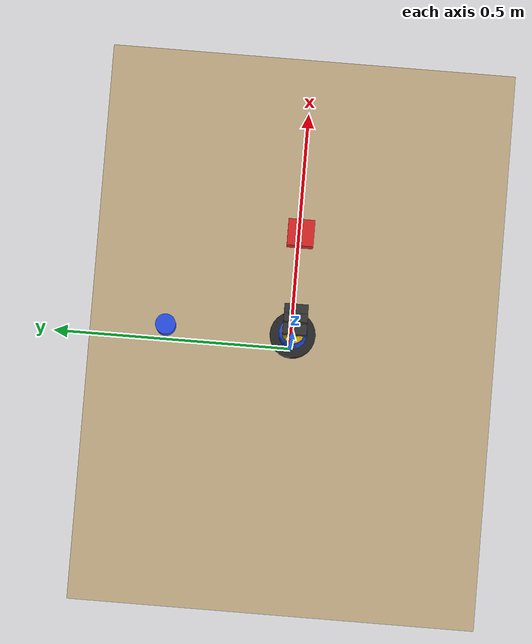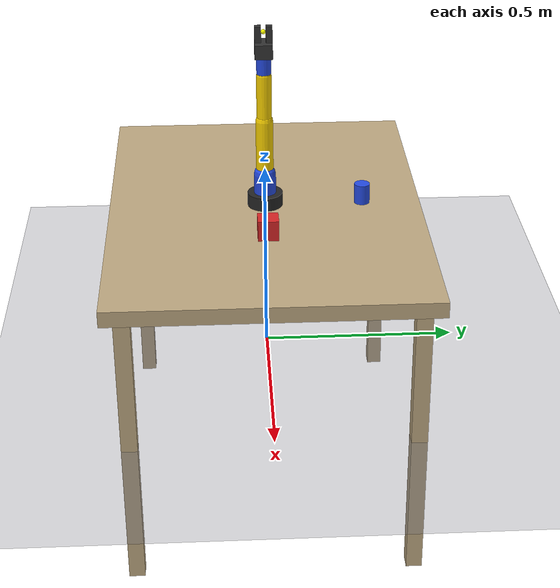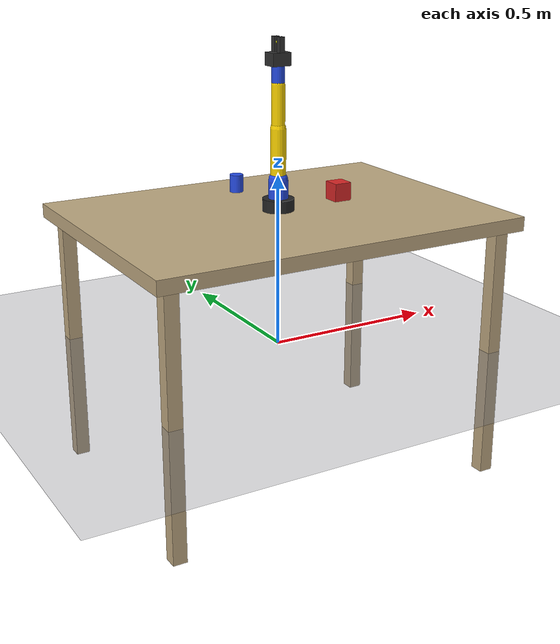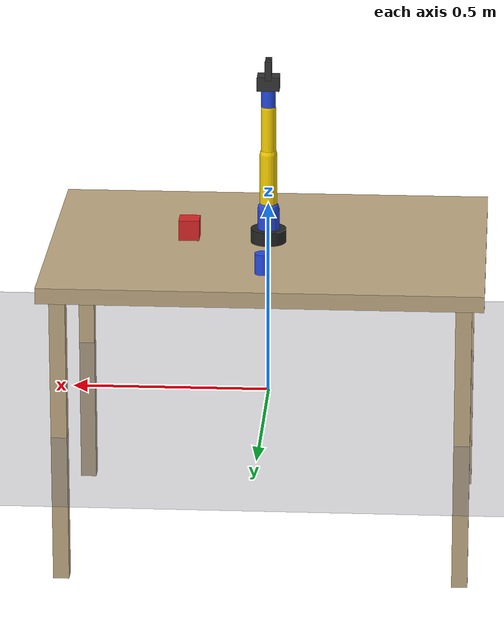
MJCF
<mujoco model="so101_task1">

  <compiler angle="radian" autolimits="true"/>

  <option timestep="0.002" gravity="0 0 -9.81" integrator="RK4">
    <flag contact="enable" frictionloss="enable"/>
  </option>

  <visual>
    <headlight diffuse="0.65 0.65 0.65" ambient="0.35 0.35 0.35" specular="0.15 0.15 0.15"/>
    <rgba haze="0.15 0.25 0.35 1"/>
    <!-- Free camera default: pulled back to frame full robot + table + target -->
    <global azimuth="135" elevation="-22" offwidth="1920" offheight="1080"/>
    <quality shadowsize="2048"/>
    <map force="0.1" zfar="30"/>
  </visual>

  <statistic center="0.05 0.10 0.55" extent="1.2"/>

  <asset>
    <!-- Procedural checkerboard textures for table + floor (no external files) -->
    <texture name="floor_tex" type="2d" builtin="checker"
             rgb1="0.35 0.35 0.40" rgb2="0.55 0.55 0.60"
             width="512" height="512" mark="edge" markrgb="0.1 0.1 0.1"/>
    <texture name="table_tex" type="2d" builtin="checker"
             rgb1="0.85 0.78 0.62" rgb2="0.65 0.55 0.40"
             width="512" height="512" mark="edge" markrgb="0.2 0.15 0.1"/>

    <material name="floor_mat"   texture="floor_tex" texrepeat="8 8"
              specular="0.1" shininess="0.1" reflectance="0.05"/>
    <material name="table_mat"   texture="table_tex" texrepeat="4 3"
              specular="0.2" shininess="0.3"/>
    <material name="base_mat"    rgba="0.15 0.15 0.15 1" shininess="0.6"/>
    <material name="link_mat"    rgba="1.0 0.84 0.0 1" shininess="0.5"/>
    <material name="joint_mat"   rgba="0.15 0.30 0.90 1" shininess="0.5"/>
    <material name="gripper_mat" rgba="0.20 0.20 0.20 1"/>
    <material name="object_mat"  rgba="0.85 0.15 0.15 1" shininess="0.5"/>
    <material name="blue_mat"    rgba="0.15 0.30 0.90 1" shininess="0.5"/>
  </asset>

  <default>
    <joint damping="0.8" armature="0.02" frictionloss="0.02"/>
    <geom contype="1" conaffinity="1" condim="4" friction="1.2 0.005 0.0001"/>
    <position kp="120" kv="12"/>
  </default>

  <worldbody>

    <!-- Floor -->
    <geom name="floor" type="plane" size="2 2 0.1"
          material="floor_mat" contype="1" conaffinity="1"/>

    <!-- Table — top surface at z = 0.40 -->
    <body name="table" pos="0 0 0.38">
      <geom type="box" size="0.55 0.40 0.02" pos="0 0 0"      material="table_mat"/>
      <geom type="box" size="0.02 0.02 0.38" pos=" 0.50  0.35 -0.38" material="table_mat"/>
      <geom type="box" size="0.02 0.02 0.38" pos="-0.50  0.35 -0.38" material="table_mat"/>
      <geom type="box" size="0.02 0.02 0.38" pos=" 0.50 -0.35 -0.38" material="table_mat"/>
      <geom type="box" size="0.02 0.02 0.38" pos="-0.50 -0.35 -0.38" material="table_mat"/>
    </body>

    <body name="base_link" pos="0 0 0.40">
      <geom name="base_geom" type="cylinder" size="0.045 0.035"
            material="base_mat" contype="1" conaffinity="0"/>
      <inertial pos="0 0 0" mass="0.6" diaginertia="0.002 0.002 0.002"/>

      <!-- Joint 1: shoulder_pan — Z axis (yaw) -->
      <joint name="shoulder_pan" type="hinge" axis="0 0 1"
             range="-1.91986 1.91986" pos="0 0 0"/>

      <body name="shoulder_link" pos="0 0 0.055">
        <geom name="shoulder_geom" type="capsule" size="0.028"
              fromto="0 0 -0.03 0 0 0.03" material="joint_mat" contype="1" conaffinity="0"/>
        <inertial pos="0 0 0" mass="0.35" diaginertia="0.001 0.001 0.001"/>

        <!-- Joint 2: shoulder_lift — Y axis (pitch) -->
        <joint name="shoulder_lift" type="hinge" axis="0 1 0"
               range="-1.74533 1.74533" pos="0 0 0"/>

        <body name="upper_arm_link" pos="0 0 0.035">
          <geom name="upper_arm_geom" type="capsule" size="0.022"
                fromto="0 0 0 0 0 0.14" material="link_mat" contype="1" conaffinity="0"/>
          <inertial pos="0 0 0.07" mass="0.28" diaginertia="0.0006 0.0006 0.00005"/>

          <!-- Joint 3: elbow_flex — Y axis (pitch) -->
          <joint name="elbow_flex" type="hinge" axis="0 1 0"
                 range="-1.69 1.69" pos="0 0 0.14"/>

          <body name="lower_arm_link" pos="0 0 0.14">
            <geom name="lower_arm_geom" type="capsule" size="0.019"
                  fromto="0 0 0 0 0 0.12" material="link_mat" contype="1" conaffinity="0"/>
            <inertial pos="0 0 0.06" mass="0.22" diaginertia="0.0004 0.0004 0.00004"/>

            <!-- Joint 4: wrist_flex — Y axis (pitch) -->
            <joint name="wrist_flex" type="hinge" axis="0 1 0"
                   range="-1.65806 1.65806" pos="0 0 0.12"/>

            <body name="wrist_link" pos="0 0 0.12">
              <geom name="wrist_geom" type="capsule" size="0.018"
                    fromto="0 0 0 0 0 0.05" material="joint_mat" contype="1" conaffinity="0"/>
              <inertial pos="0 0 0.025" mass="0.12" diaginertia="0.0002 0.0002 0.00003"/>

              <!-- Joint 5: wrist_roll — X axis (roll) -->
              <joint name="wrist_roll" type="hinge" axis="1 0 0"
                     range="-2.74385 2.84121" pos="0 0 0"/>

              <body name="gripper_link" pos="0 0 0.05">
                <!-- Gripper palm -->
                <geom name="gripper_palm" type="box" size="0.028 0.022 0.018"
                      pos="0 0 0.018" material="gripper_mat" contype="1" conaffinity="0"/>
                <!-- Fixed lower jaw -->
                <geom name="fixed_jaw" type="box" size="0.008 0.008 0.025"
                      pos="0 -0.014 0.052" material="gripper_mat"
                      contype="1" conaffinity="1" friction="2.0 0.01 0.002"/>
                <inertial pos="0 0 0.02" mass="0.09" diaginertia="0.0001 0.0001 0.00008"/>

                <!-- EE tracking site — centred between the two jaws -->
                <site name="ee_site" pos="0 0 0.062" size="0.006" rgba="1 1 0 1"/>

                <!-- Joint 6: gripper — single revolute jaw
                     open  ≈ 1.4 rad  (jaw swings open)
                     closed ≈ 0.05 rad (jaw clamped on object) -->
                <joint name="gripper" type="hinge" axis="0 1 0"
                       range="-0.17453 1.74533" pos="0 0.014 0.036"/>

                <!-- Moving jaw -->
                <body name="moving_jaw_link" pos="0 0.014 0.036">
                  <geom name="moving_jaw" type="box" size="0.008 0.008 0.025"
                        pos="0 0 0.016" material="gripper_mat"
                        contype="1" conaffinity="1" friction="2.0 0.01 0.002"/>
                  <inertial pos="0 0 0.016" mass="0.025"
                            diaginertia="0.00002 0.00002 0.000005"/>
                </body>

              </body> <!-- gripper_link -->
            </body> <!-- wrist_link -->
          </body> <!-- lower_arm_link -->
        </body> <!-- upper_arm_link -->
      </body> <!-- shoulder_link -->
    </body> <!-- base_link -->

    <body name="object" pos="0.20 0.0 0.432">
      <freejoint name="object_freejoint"/>
      <geom name="object_geom" type="box" size="0.026 0.026 0.026"
            material="object_mat" mass="0.06"
            friction="1.8 0.01 0.001" contype="1" conaffinity="1" condim="4"/>
      <inertial pos="0 0 0" mass="0.06" diaginertia="0.00003 0.00003 0.00003"/>
      <site name="object_site" pos="0 0 0" size="0.005" rgba="1 0 0 1"/>
    </body>

    <body name="blue_target" pos="0.0 0.25 0.426">
      <geom name="blue_cyl_geom" type="cylinder" size="0.020 0.026"
            material="blue_mat"
            contype="1" conaffinity="1" friction="0.8 0.005 0.0001"/>
      <inertial pos="0 0 0" mass="1.0" diaginertia="0.001 0.001 0.001"/>
    </body>

    <body name="cam_overhead" pos="0.15 0.0 1.30">
      <camera name="overhead" fovy="60"/>
    </body>

  </worldbody>

  <equality>
    <weld name="gripper_object_weld"
          body1="gripper_link" body2="object"
          active="false"
          solref="-10000 -400" solimp="0.999 0.9999 1e-6 0.5 2"/>
  </equality>

  <actuator>
    <position name="act_shoulder_pan"  joint="shoulder_pan"
              kp="160" kv="16" ctrlrange="-1.91986 1.91986"
              forcelimited="true" forcerange="-25 25"/>
    <position name="act_shoulder_lift" joint="shoulder_lift"
              kp="160" kv="16" ctrlrange="-1.74533 1.74533"
              forcelimited="true" forcerange="-25 25"/>
    <position name="act_elbow_flex"    joint="elbow_flex"
              kp="120" kv="12" ctrlrange="-1.69 1.69"
              forcelimited="true" forcerange="-20 20"/>
    <position name="act_wrist_flex"    joint="wrist_flex"
              kp="90"  kv="9"  ctrlrange="-1.65806 1.65806"
              forcelimited="true" forcerange="-12 12"/>
    <position name="act_wrist_roll"    joint="wrist_roll"
              kp="70"  kv="7"  ctrlrange="-2.74385 2.84121"
              forcelimited="true" forcerange="-10 10"/>
    <position name="act_gripper"       joint="gripper"
              kp="200" kv="20" ctrlrange="-0.17453 1.74533"
              forcelimited="true" forcerange="-8 8"/>
  </actuator>

  <sensor>
    <jointpos name="q_shoulder_pan"  joint="shoulder_pan"/>
    <jointpos name="q_shoulder_lift" joint="shoulder_lift"/>
    <jointpos name="q_elbow_flex"    joint="elbow_flex"/>
    <jointpos name="q_wrist_flex"    joint="wrist_flex"/>
    <jointpos name="q_wrist_roll"    joint="wrist_roll"/>
    <jointpos name="q_gripper"       joint="gripper"/>
  </sensor>

</mujoco>
